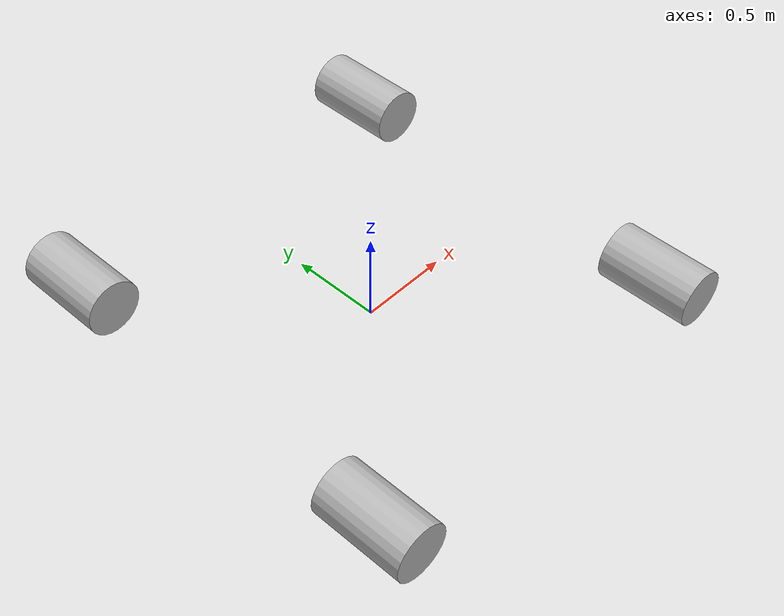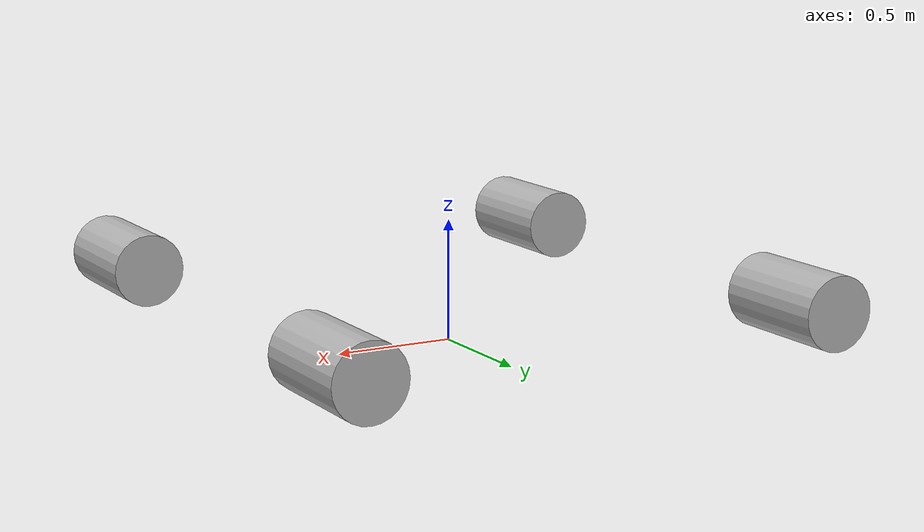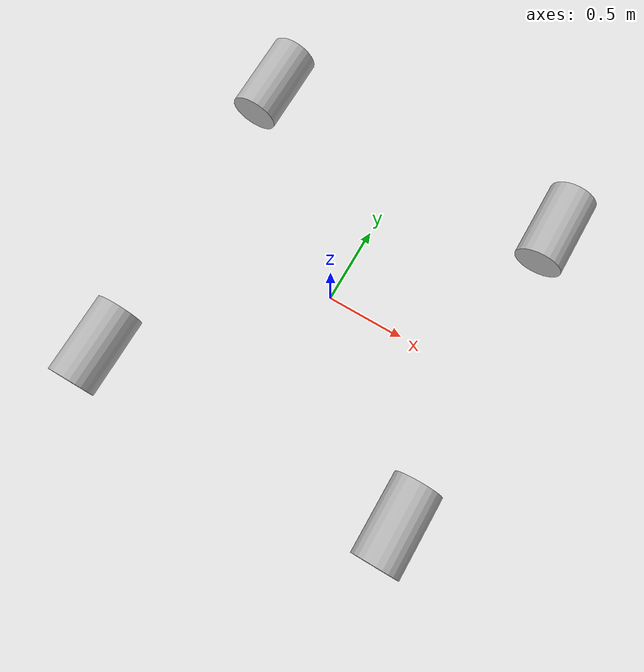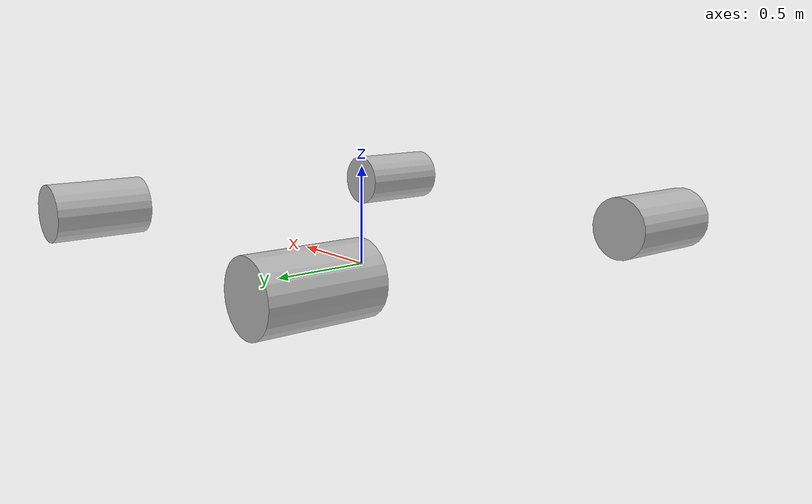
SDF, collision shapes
<?xml version='1.0'?>
<sdf version='1.8'>
<model name='obstacles'>
<pose>0 0 0 0 0 0</pose>
<static>false</static>

  <link name='obstacle_1'>
    <pose>-1.0 -1.0 0.25 -1.5708 0 0</pose>
    <collision name='obstacle_1_collision'>
      <geometry>
        <cylinder>
          <radius>0.15</radius>
          <length>0.5</length>
        </cylinder>
      </geometry>
    </collision>
    <visual name='obstacle_1_visual'>
      <geometry>
        <mesh>
          <uri>model://turtlebot3_dqn_world/meshes/cylinder_obsticle_1.obj</uri>
        </mesh>
      </geometry>
    </visual>
  </link>

  <link name='obstacle_2'>
    <pose>-1.0 1.0 0.25 -1.5708 0 0</pose>
    <collision name='obstacle_2_collision'>
      <geometry>
        <cylinder>
          <radius>0.15</radius>
          <length>0.5</length>
        </cylinder>
      </geometry>
    </collision>
    <visual name='obstacle_2_visual'>
      <geometry>
        <mesh>
          <uri>model://turtlebot3_dqn_world/meshes/cylinder_obsticle_2.obj</uri>
        </mesh>
      </geometry>
    </visual>
  </link>

  <link name='obstacle_3'>
    <pose>1.0 -1.0 0.25 -1.5708 0 0</pose>
    <collision name='obstacle_3_collision'>
      <geometry>
        <cylinder>
          <radius>0.15</radius>
          <length>0.5</length>
        </cylinder>
      </geometry>
    </collision>
    <visual name='obstacle_3_visual'>
      <geometry>
        <mesh>
          <uri>model://turtlebot3_dqn_world/meshes/cylinder_obsticle_3.obj</uri>
        </mesh>
      </geometry>
    </visual>
  </link>

  <link name='obstacle_4'>
    <pose>1.0 1.0 0.25 -1.5708 0 0</pose>
    <collision name='obstacle_4_collision'>
      <geometry>
        <cylinder>
          <radius>0.15</radius>
          <length>0.5</length>
        </cylinder>
      </geometry>
    </collision>
    <visual name='obstacle_4_visual'>
      <geometry>
        <mesh>
          <uri>model://turtlebot3_dqn_world/meshes/cylinder_obsticle_4.obj</uri>
        </mesh>
      </geometry>
    </visual>
  </link>

</model>
</sdf>
